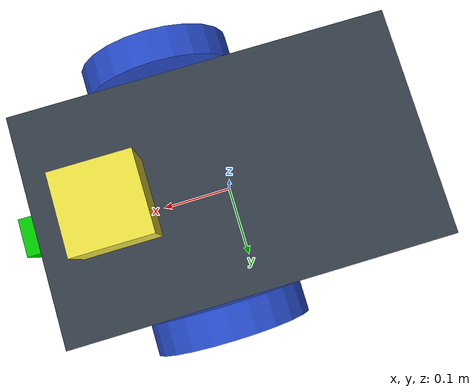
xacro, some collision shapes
<?xml version="1.0" ?>
<robot name="m2wr" xmlns:xacro="http://www.ros.org/wiki/xacro">

    <xacro:include filename="$(find m2wr_description)/urdf/m2wr_materials.xacro"/>
    <xacro:include filename="$(find m2wr_description)/urdf/m2wr.gazebo.xacro"/>

  <link name="base_link">
    <!-- pose and inertial -->
    <pose>0 0 0.1 0 0 0</pose>
    <inertial>
      <mass value="5"/>
      <origin rpy="0 0 0" xyz="0 0 0"/>
      <inertia ixx="0.0395416666667" ixy="0" ixz="0" iyy="0.106208333333" iyz="0" izz="0.106208333333"/>
    </inertial>
    <!-- body -->
    <collision name="collision_chassis">
      <geometry>
        <box size="0.5 0.3 0.1"/>
      </geometry>
    </collision>

    <visual>
      <origin rpy="0 0 0" xyz="0 0 0"/>
      <geometry>
        <box size="0.5 0.3 0.1"/>
      </geometry>
      <material name="blue"/>
    </visual>

    <!-- caster front -->
    <collision name="caster_front_collision">
      <origin rpy=" 0 0 0" xyz="-0.2 0 -0.05"/>
      <geometry>
        <sphere radius="0.05"/>
      </geometry>
      <surface>
        <friction>
          <ode>
            <mu>0</mu>
            <mu2>0</mu2>
            <slip1>1.0</slip1>
            <slip2>1.0</slip2>
          </ode>
        </friction>
      </surface>
    </collision>

    <visual name="caster_front_visual">
      <origin rpy=" 0 0 0" xyz="-0.2 0 -0.05"/>
      <geometry>
        <sphere radius="0.05"/>
      </geometry>
    </visual>

  </link>

  <link name="link_right_wheel">
    <inertial>
      <mass value="0.2"/>
      <origin rpy="0 1.5707 1.5707" xyz="0 0 0"/>
      <inertia ixx="0.000526666666667" ixy="0" ixz="0" iyy="0.000526666666667" iyz="0" izz="0.001"/>
    </inertial>
    <collision name="link_right_wheel_collision">
      <origin rpy="0 1.5707 1.5707" xyz="0 0 0"/>
      <geometry>
        <cylinder length="0.04" radius="0.1"/>
      </geometry>
    </collision>
    <visual name="link_right_wheel_visual">
      <origin rpy="0 1.5707 1.5707" xyz="0 0 0"/>
      <geometry>
        <cylinder length="0.04" radius="0.1"/>
      </geometry>
    </visual>
  </link>

  <joint name="joint_right_wheel" type="continuous">
    <origin rpy="0 0 0" xyz="0.05 -0.17 0"/>
    <child link="link_right_wheel"/>
    <parent link="base_link"/>
    <axis rpy="0 0 0" xyz="0 1 0"/>
    <limit effort="10000" velocity="1000"/>
    <joint_properties damping="1.0" friction="1.0"/>
  </joint>

  <link name="link_left_wheel">
    <inertial>
      <mass value="0.2"/>
      <origin rpy="0 1.5707 1.5707" xyz="0 0 0"/>
      <inertia ixx="0.000526666666667" ixy="0" ixz="0" iyy="0.000526666666667" iyz="0" izz="0.001"/>
    </inertial>
    <collision name="link_left_wheel_collision">
      <origin rpy="0 1.5707 1.5707" xyz="0 0 0"/>
      <geometry>
        <cylinder length="0.04" radius="0.1"/>
      </geometry>
    </collision>
    <visual name="link_left_wheel_visual">
      <origin rpy="0 1.5707 1.5707" xyz="0 0 0"/>
      <geometry>
        <cylinder length="0.04" radius="0.1"/>
      </geometry>
    </visual>
  </link>

  <joint name="joint_left_wheel" type="continuous">
    <origin rpy="0 0 0" xyz="0.05 0.17 0"/>
    <child link="link_left_wheel"/>
    <parent link="base_link"/>
    <axis rpy="0 0 0" xyz="0 1 0"/>
    <limit effort="10000" velocity="1000"/>
    <joint_properties damping="1.0" friction="1.0"/>
  </joint>

  <!-- Hokuyo Laser -->
  <link name="hokuyo_link">
    <collision>
      <origin xyz="0 0 0" rpy="0 0 0"/>
      <geometry>
          <box size="0.1 0.1 0.1"/>
      </geometry>
    </collision>

    <visual>
      <origin xyz="0 0 0" rpy="0 0 0"/>
      <geometry>
        <mesh filename="package://m2wr_description/meshes/hokuyo.dae"/>
      </geometry>
    </visual>

    <inertial>
      <mass value="1e-5" />
      <origin xyz="0 0 0" rpy="0 0 0"/>
      <inertia ixx="1e-6" ixy="0" ixz="0" iyy="1e-6" iyz="0" izz="1e-6" />
    </inertial>
  </link>

  <joint name="hokuyo_joint" type="fixed">
    <axis xyz="0 1 0" />
    <origin xyz="0.15 0 0.08" rpy="0 0 0"/>
    <parent link="base_link"/>
    <child link="hokuyo_link"/>
  </joint>

    <link name="camera_link">
      <collision>
        <origin xyz="0 0 0" rpy="0 0 0"/>
        <geometry>
          <box size="0.05 0.05 0.05"/>
        </geometry>
      </collision>

      <visual>
        <origin xyz="0 0 0" rpy="0 0 0"/>
        <geometry>
          <box size="0.05 0.05 0.05"/>
        </geometry>
        <material name="green"/>
      </visual>

      <inertial>
        <mass value="0.3" />
        <origin xyz="0 0 0" rpy="0 0 0"/>
        <box_inertia m="0.05" x="0.05" y="0.05" z="0.05" />
        <inertia ixx="1e-6" ixy="0" ixz="0" iyy="1e-6" iyz="0" izz="1e-6" />
      </inertial>
    </link>

    <joint name="camera_joint" type="fixed">
      <axis xyz="0 1 0" />
      <origin xyz=".25 0 0" rpy="0 0 0"/>
      <parent link="base_link"/>
      <child link="camera_link"/>
    </joint>

  <link name="odom"/>
  <joint name="to_odom_connect" type="fixed">
    <origin rpy="0 0 0" xyz="0 0 0.1"/>
    <parent link="odom"/>
    <child link="base_link"/>
  </joint>

</robot>

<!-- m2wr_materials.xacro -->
<robot>
    <material name="black">
      <color rgba="0.0 0.0 0.0 1.0"/>
    </material>
    <material name="blue">
      <color rgba="0.203125 0.23828125 0.28515625 1.0"/>
    </material>
    <material name="green">
      <color rgba="0.0 0.8 0.0 1.0"/>
    </material>
    <material name="grey">
      <color rgba="0.2 0.2 0.2 1.0"/>
    </material>
    <material name="orange">
      <color rgba="1.0 0.423529411765 0.0392156862745 1.0"/>
    </material>
    <material name="brown">
      <color rgba="0.870588235294 0.811764705882 0.764705882353 1.0"/>
    </material>
    <material name="red">
      <color rgba="0.80078125 0.12890625 0.1328125 1.0"/>
    </material>
    <material name="white">
      <color rgba="1.0 1.0 1.0 1.0"/>
    </material>
</robot>
